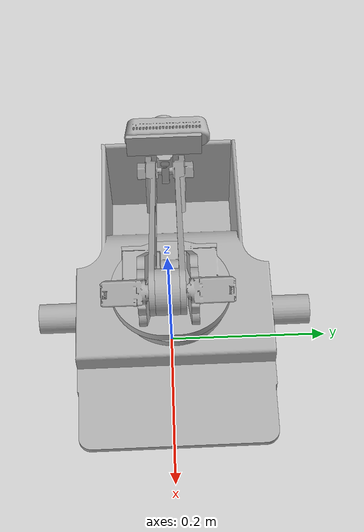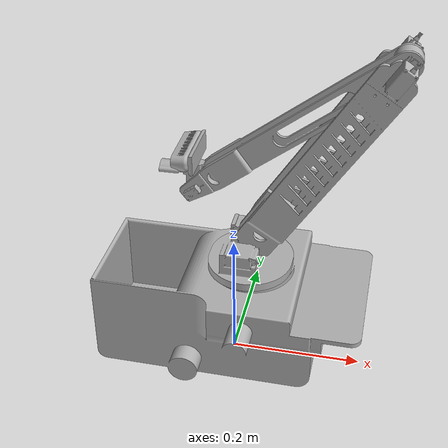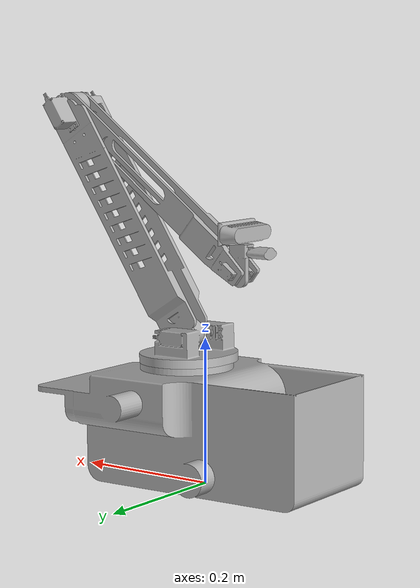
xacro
<?xml version="1.0" ?>
<robot name="arm" xmlns:xacro="http://www.ros.org/wiki/xacro">

<xacro:include filename="$(find arm_description)/urdf/materials.xacro" />
<xacro:include filename="$(find arm_description)/urdf/arm.trans" />
<xacro:include filename="$(find arm_description)/urdf/arm.gazebo" />
<link name="base_link">
  <inertial>
    <origin rpy="0 0 0" xyz="0.012579936096648252 0.005828122818691775 0.08232623735929202"/>
    <mass value="7.154111516956614"/>
    <inertia ixx="0.039325" ixy="-0.000176" ixz="-0.005645" iyy="0.061341" iyz="-4.4e-05" izz="0.071469"/>
  </inertial>
  <visual>
    <origin rpy="0 0 0" xyz="0 0 0"/>
    <geometry>
      <mesh filename="package://arm_description/meshes/base_link.stl" scale="0.001 0.001 0.001"/>
    </geometry>
    <material name="silver_default"/>
  </visual>
  <collision>
    <origin rpy="0 0 0" xyz="0 0 0"/>
    <geometry>
      <mesh filename="package://arm_description/meshes/base_link.stl" scale="0.001 0.001 0.001"/>
    </geometry>
  </collision>
</link>

<link name="shoulder_link_1">
  <inertial>
    <origin rpy="0 0 0" xyz="0.108294229870772 0.010456900370286687 0.1673448904480454"/>
    <mass value="0.3248629426538314"/>
    <inertia ixx="0.003857" ixy="-6e-06" ixz="-0.002325" iyy="0.005264" iyz="-9e-06" izz="0.001767"/>
  </inertial>
  <visual>
    <origin rpy="0 0 0" xyz="-0.02654 0.007588 -0.204187"/>
    <geometry>
      <mesh filename="package://arm_description/meshes/shoulder_link_1.stl" scale="0.001 0.001 0.001"/>
    </geometry>
    <material name="silver_default"/>
  </visual>
  <collision>
    <origin rpy="0 0 0" xyz="-0.02654 0.007588 -0.204187"/>
    <geometry>
      <mesh filename="package://arm_description/meshes/shoulder_link_1.stl" scale="0.001 0.001 0.001"/>
    </geometry>
  </collision>
</link>

<link name="elbow_link_1">
  <inertial>
    <origin rpy="0 0 0" xyz="-0.16988410714457147 -0.010887148082396297 -0.12857019394868807"/>
    <mass value="0.14217501750592101"/>
    <inertia ixx="0.000748" ixy="-6e-06" ixz="-0.000924" iyy="0.001955" iyz="-5e-06" izz="0.00127"/>
  </inertial>
  <visual>
    <origin rpy="0 0 0" xyz="-0.221381 -0.01276 -0.505424"/>
    <geometry>
      <mesh filename="package://arm_description/meshes/elbow_link_1.stl" scale="0.001 0.001 0.001"/>
    </geometry>
    <material name="silver_default"/>
  </visual>
  <collision>
    <origin rpy="0 0 0" xyz="-0.221381 -0.01276 -0.505424"/>
    <geometry>
      <mesh filename="package://arm_description/meshes/elbow_link_1.stl" scale="0.001 0.001 0.001"/>
    </geometry>
  </collision>
</link>

<link name="wrist_link_1">
  <inertial>
    <origin rpy="0 0 0" xyz="-0.00010898939789808632 0.0039908182646140496 0.016244011331448316"/>
    <mass value="0.01246916080662524"/>
    <inertia ixx="4e-06" ixy="-0.0" ixz="0.0" iyy="4e-06" iyz="0.0" izz="1e-06"/>
  </inertial>
  <visual>
    <origin rpy="0 0 0" xyz="0.05813 0.002649 -0.293742"/>
    <geometry>
      <mesh filename="package://arm_description/meshes/wrist_link_1.stl" scale="0.001 0.001 0.001"/>
    </geometry>
    <material name="silver_default"/>
  </visual>
  <collision>
    <origin rpy="0 0 0" xyz="0.05813 0.002649 -0.293742"/>
    <geometry>
      <mesh filename="package://arm_description/meshes/wrist_link_1.stl" scale="0.001 0.001 0.001"/>
    </geometry>
  </collision>
</link>

<link name="grip_link_1">
  <inertial>
    <origin rpy="0 0 0" xyz="-0.0387306980409022 -0.0001993886963191098 0.004147426129162524"/>
    <mass value="0.012180779699964627"/>
    <inertia ixx="1e-06" ixy="-0.0" ixz="0.0" iyy="3e-06" iyz="-0.0" izz="3e-06"/>
  </inertial>
  <visual>
    <origin rpy="0 0 0" xyz="0.044775 -0.001375 -0.316816"/>
    <geometry>
      <mesh filename="package://arm_description/meshes/grip_link_1.stl" scale="0.001 0.001 0.001"/>
    </geometry>
    <material name="silver_default"/>
  </visual>
  <collision>
    <origin rpy="0 0 0" xyz="0.044775 -0.001375 -0.316816"/>
    <geometry>
      <mesh filename="package://arm_description/meshes/grip_link_1.stl" scale="0.001 0.001 0.001"/>
    </geometry>
  </collision>
</link>

<link name="arm_base_1">
  <inertial>
    <origin rpy="0 0 0" xyz="-0.005489997625429028 -0.0026395874824817313 0.017328163094481264"/>
    <mass value="0.3055003056442891"/>
    <inertia ixx="0.000455" ixy="1e-06" ixz="1.6e-05" iyy="0.000272" iyz="-0.0" izz="0.000597"/>
  </inertial>
  <visual>
    <origin rpy="0 0 0" xyz="-0.027776 -0.005043 -0.167275"/>
    <geometry>
      <mesh filename="package://arm_description/meshes/arm_base_1.stl" scale="0.001 0.001 0.001"/>
    </geometry>
    <material name="silver_default"/>
  </visual>
  <collision>
    <origin rpy="0 0 0" xyz="-0.027776 -0.005043 -0.167275"/>
    <geometry>
      <mesh filename="package://arm_description/meshes/arm_base_1.stl" scale="0.001 0.001 0.001"/>
    </geometry>
  </collision>
</link>

<link name="intel_cam_link_1">
  <inertial>
    <origin rpy="0 0 0" xyz="0.006092030730033164 2.2847487162273297e-05 0.015032284285248443"/>
    <mass value="0.015667625068621845"/>
    <inertia ixx="9e-06" ixy="0.0" ixz="0.0" iyy="1e-06" iyz="-0.0" izz="8e-06"/>
  </inertial>
  <visual>
    <origin rpy="0 0 0" xyz="0.058353 -0.001318 -0.331745"/>
    <geometry>
      <mesh filename="package://arm_description/meshes/intel_cam_link_1.stl" scale="0.001 0.001 0.001"/>
    </geometry>
    <material name="silver_default"/>
  </visual>
  <collision>
    <origin rpy="0 0 0" xyz="0.058353 -0.001318 -0.331745"/>
    <geometry>
      <mesh filename="package://arm_description/meshes/intel_cam_link_1.stl" scale="0.001 0.001 0.001"/>
    </geometry>
  </collision>
</link>

<link name="realsense_1">
  <inertial>
    <origin rpy="0 0 0" xyz="-0.011574951605095508 0.0034559271648108092 -0.00024446378820097703"/>
    <mass value="0.04228675377977692"/>
    <inertia ixx="2.8e-05" ixy="0.0" ixz="-0.0" iyy="4e-06" iyz="-0.0" izz="2.8e-05"/>
  </inertial>
  <visual>
    <origin rpy="0 0 0" xyz="0.055932 -0.001319 -0.346758"/>
    <geometry>
      <mesh filename="package://arm_description/meshes/realsense_1.stl" scale="0.001 0.001 0.001"/>
    </geometry>
    <material name="silver_default"/>
  </visual>
  <collision>
    <origin rpy="0 0 0" xyz="0.055932 -0.001319 -0.346758"/>
    <geometry>
      <mesh filename="package://arm_description/meshes/realsense_1.stl" scale="0.001 0.001 0.001"/>
    </geometry>
  </collision>
</link>

<joint name="Rev38" type="continuous">
  <origin rpy="0 0 0" xyz="-0.001236 -0.012631 0.036912"/>
  <parent link="arm_base_1"/>
  <child link="shoulder_link_1"/>
  <axis xyz="-0.005851 0.999983 0.000835"/>
</joint>

<joint name="Rev39" type="continuous">
  <origin rpy="0 0 0" xyz="0.194841 0.020348 0.301237"/>
  <parent link="shoulder_link_1"/>
  <child link="elbow_link_1"/>
  <axis xyz="0.005851 -0.999983 -0.000835"/>
</joint>

<joint name="Rev40" type="continuous">
  <origin rpy="0 0 0" xyz="-0.279511 -0.015409 -0.211682"/>
  <parent link="elbow_link_1"/>
  <child link="wrist_link_1"/>
  <axis xyz="-0.005851 0.999983 0.000835"/>
</joint>

<joint name="Rigid41" type="fixed">
  <origin rpy="0 0 0" xyz="0.013355 0.004024 0.023074"/>
  <parent link="wrist_link_1"/>
  <child link="grip_link_1"/>
</joint>
<gazebo>
      <plugin name="gazebo_ros_vacuum_gripper" filename="libgazebo_ros_vacuum_gripper.so">
        <robotNamespace>/arm</robotNamespace>
        <bodyName>wrist_link_1</bodyName>
        <topicName>grasping</topicName>
        <maxForce>50</maxForce>
        <maxDistance>0.05</maxDistance>
        <minDistance>0.01</minDistance>
      </plugin>
</gazebo>

<joint name="Rev42" type="continuous">
  <origin rpy="0 0 0" xyz="0.027776 0.005043 0.167275"/>
  <parent link="base_link"/>
  <child link="arm_base_1"/>
  <axis xyz="0.010859 -0.000772 0.999941"/>
</joint>

<joint name="Rigid43" type="fixed">
  <origin rpy="0 0 0" xyz="-0.000223 0.003967 0.038003"/>
  <parent link="wrist_link_1"/>
  <child link="intel_cam_link_1"/>
</joint>

<joint name="Rigid48" type="fixed">
  <origin rpy="0 0 0" xyz="0.002421 1e-06 0.015013"/>
  <parent link="intel_cam_link_1"/>
  <child link="realsense_1"/>
</joint>

</robot>

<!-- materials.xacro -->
<robot name="arm" xmlns:xacro="http://www.ros.org/wiki/xacro" >

<material name="silver_default">
  <color rgba="0.700 0.700 0.700 1.000"/>
</material>

</robot>

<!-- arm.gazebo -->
<robot name="arm" xmlns:xacro="http://www.ros.org/wiki/xacro" >

<xacro:property name="body_color" value="Gazebo/Silver" />

<gazebo>
  <plugin filename="libgazebo_ros_control.so" name="gazebo_ros_control"/>
    <robotNamespace>/</robotNamespace>
    <robotSimType>gazebo_ros_control/DefaultRobotHWSim</robotSimType>
</gazebo>

<gazebo reference="base_link">
  <material>${body_color}</material>
  <mu1>0.2</mu1>
  <mu2>0.2</mu2>
  <selfCollide>true</selfCollide>
  <gravity>true</gravity>
</gazebo>

<gazebo reference="shoulder_link_1">
  <material>${body_color}</material>
  <mu1>0.2</mu1>
  <mu2>0.2</mu2>
  <selfCollide>true</selfCollide>
</gazebo>

<gazebo reference="elbow_link_1">
  <material>${body_color}</material>
  <mu1>0.2</mu1>
  <mu2>0.2</mu2>
  <selfCollide>true</selfCollide>
</gazebo>

<gazebo reference="wrist_link_1">
  <material>${body_color}</material>
  <mu1>0.2</mu1>
  <mu2>0.2</mu2>
  <selfCollide>true</selfCollide>
</gazebo>

<gazebo reference="grip_link_1">
  <material>${body_color}</material>
  <mu1>0.2</mu1>
  <mu2>0.2</mu2>
  <selfCollide>true</selfCollide>
</gazebo>

<gazebo reference="arm_base_1">
  <material>${body_color}</material>
  <mu1>0.2</mu1>
  <mu2>0.2</mu2>
  <selfCollide>true</selfCollide>
</gazebo>

<gazebo reference="intel_cam_link_1">
  <material>${body_color}</material>
  <mu1>0.2</mu1>
  <mu2>0.2</mu2>
  <selfCollide>true</selfCollide>
</gazebo>

<gazebo reference="realsense_1">
  <material>${body_color}</material>
  <mu1>0.2</mu1>
  <mu2>0.2</mu2>
  <selfCollide>true</selfCollide>
  <sensor name="realsense_1_camera" type="depth">
    <update_rate>20</update_rate>
    <camera>
      <horizontal_fov>1.047198</horizontal_fov>
      <image>
        <width>640</width>
        <height>480</height>
        <format>R8G8B8</format>
      </image>
      <clip>
        <near>0.05</near>
        <far>3</far>
      </clip>
    </camera>
    <plugin name="realsense_1_controller" filename="libgazebo_ros_openni_kinect.so">
      <baseline>0.2</baseline>
      <alwaysOn>true</alwaysOn>
      <updateRate>1.0</updateRate>
      <cameraName>realsense_ir</cameraName>
      <imageTopicName>/realsense/color/image_raw</imageTopicName>
      <cameraInfoTopicName>/realsense/color/camera_info</cameraInfoTopicName>
      <depthImageTopicName>/realsense/depth/image_raw</depthImageTopicName>
      <depthImageInfoTopicName>/realsense/depth/camera_info</depthImageInfoTopicName>
      <pointCloudTopicName>/realsense/depth/points</pointCloudTopicName>
      <frameName>real_frame</frameName>
      <pointCloudCutoff>0.5</pointCloudCutoff>
      <pointCloudCutoffMax>3.0</pointCloudCutoffMax>
      <distortionK1>0.00000001</distortionK1>
      <distortionK2>0.00000001</distortionK2>
      <distortionK3>0.00000001</distortionK3>
      <distortionT1>0.00000001</distortionT1>
      <distortionT2>0.00000001</distortionT2>
      <CxPrime>0</CxPrime>
      <Cx>0</Cx>
      <Cy>0</Cy>
      <focalLength>0</focalLength>
      <hackBaseline>0</hackBaseline>
    </plugin>
  </sensor>
</gazebo>

</robot>
